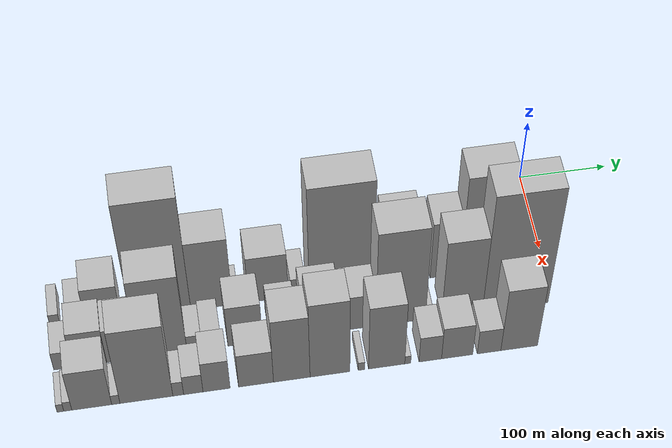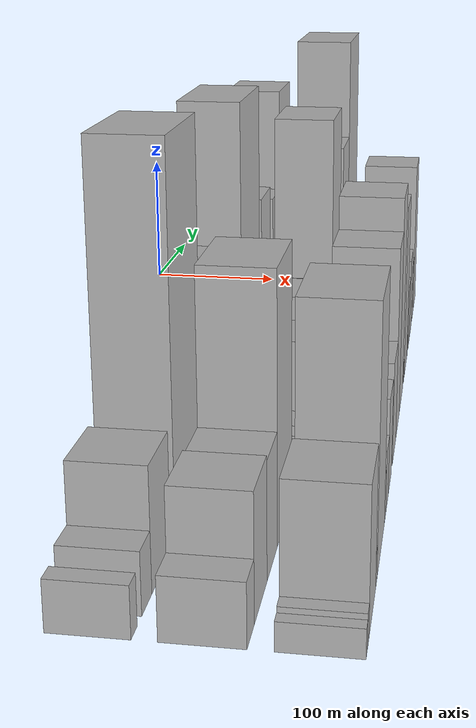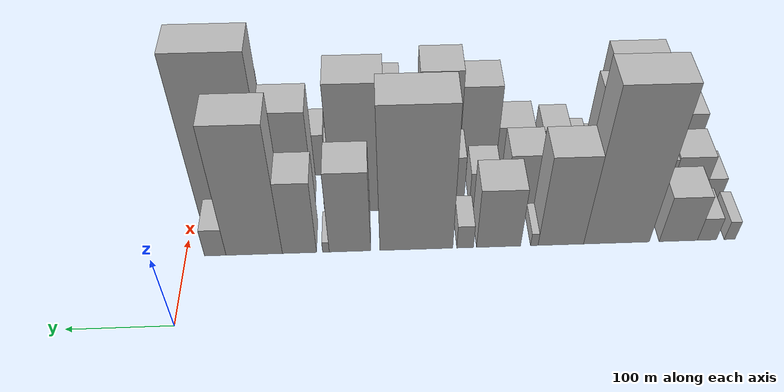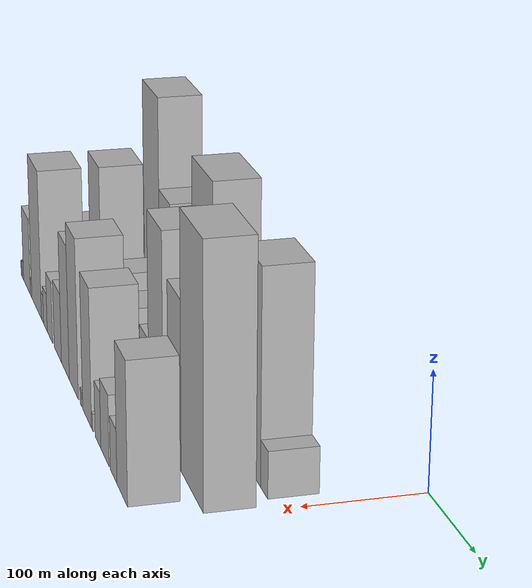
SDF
<sdf version="1.6">
 <world name="default">
  <model name="building_1">
   <static>1</static>
   <pose>100.0000 -542.5164 0 0.000000 0.000000 0.000000</pose>
   <link name="link">
    <pose>0 0 13.50 0 0 0</pose>
    <collision name="collision"><geometry><box><size>40.0000 10.9673 27.0000</size></box></geometry></collision>
    <visual name="visual">
     <cast_shadows>0</cast_shadows>
     <geometry><box><size>40.0000 10.9673 27.0000</size></box></geometry>
     <material>
      <script>
       <uri>model://HANNAS_wall/materials/scripts</uri>
       <uri>model://HANNAS_wall/materials/textures</uri>
       <name>vrc/HANNAS_wall</name>
      </script>
     </material>
    </visual>
   </link>
  </model>
  <model name="building_2">
   <static>1</static>
   <pose>100.0000 -519.4417 0 0.000000 0.000000 0.000000</pose>
   <link name="link">
    <pose>0 0 16.50 0 0 0</pose>
    <collision name="collision"><geometry><box><size>40.0000 19.1822 33.0000</size></box></geometry></collision>
    <visual name="visual">
     <cast_shadows>0</cast_shadows>
     <geometry><box><size>40.0000 19.1822 33.0000</size></box></geometry>
     <material>
      <script>
       <uri>model://HANNAS_wall/materials/scripts</uri>
       <uri>model://HANNAS_wall/materials/textures</uri>
       <name>vrc/HANNAS_wall</name>
      </script>
     </material>
    </visual>
   </link>
  </model>
  <model name="building_3">
   <static>1</static>
   <pose>100.0000 -490.4910 0 0.000000 0.000000 0.000000</pose>
   <link name="link">
    <pose>0 0 33.00 0 0 0</pose>
    <collision name="collision"><geometry><box><size>40.0000 38.7191 66.0000</size></box></geometry></collision>
    <visual name="visual">
     <cast_shadows>0</cast_shadows>
     <geometry><box><size>40.0000 38.7191 66.0000</size></box></geometry>
     <material>
      <script>
       <uri>model://HANNAS_wall/materials/scripts</uri>
       <uri>model://HANNAS_wall/materials/textures</uri>
       <name>vrc/HANNAS_wall</name>
      </script>
     </material>
    </visual>
   </link>
  </model>
  <model name="building_4">
   <static>1</static>
   <pose>100.0000 -427.9888 0 0.000000 0.000000 0.000000</pose>
   <link name="link">
    <pose>0 0 105.00 0 0 0</pose>
    <collision name="collision"><geometry><box><size>40.0000 66.2853 210.0000</size></box></geometry></collision>
    <visual name="visual">
     <cast_shadows>0</cast_shadows>
     <geometry><box><size>40.0000 66.2853 210.0000</size></box></geometry>
     <material>
      <script>
       <uri>model://HANNAS_wall/materials/scripts</uri>
       <uri>model://HANNAS_wall/materials/textures</uri>
       <name>vrc/HANNAS_wall</name>
      </script>
     </material>
    </visual>
   </link>
  </model>
  <model name="building_5">
   <static>1</static>
   <pose>100.0000 -371.9777 0 0.000000 0.000000 0.000000</pose>
   <link name="link">
    <pose>0 0 63.00 0 0 0</pose>
    <collision name="collision"><geometry><box><size>40.0000 45.7369 126.0000</size></box></geometry></collision>
    <visual name="visual">
     <cast_shadows>0</cast_shadows>
     <geometry><box><size>40.0000 45.7369 126.0000</size></box></geometry>
     <material>
      <script>
       <uri>model://HANNAS_wall/materials/scripts</uri>
       <uri>model://HANNAS_wall/materials/textures</uri>
       <name>vrc/HANNAS_wall</name>
      </script>
     </material>
    </visual>
   </link>
  </model>
  <model name="building_6">
   <static>1</static>
   <pose>100.0000 -345.3822 0 0.000000 0.000000 0.000000</pose>
   <link name="link">
    <pose>0 0 9.00 0 0 0</pose>
    <collision name="collision"><geometry><box><size>40.0000 7.4540 18.0000</size></box></geometry></collision>
    <visual name="visual">
     <cast_shadows>0</cast_shadows>
     <geometry><box><size>40.0000 7.4540 18.0000</size></box></geometry>
     <material>
      <script>
       <uri>model://HANNAS_wall/materials/scripts</uri>
       <uri>model://HANNAS_wall/materials/textures</uri>
       <name>vrc/HANNAS_wall</name>
      </script>
     </material>
    </visual>
   </link>
  </model>
  <model name="building_7">
   <static>1</static>
   <pose>100.0000 -309.6025 0 0.000000 0.000000 0.000000</pose>
   <link name="link">
    <pose>0 0 42.00 0 0 0</pose>
    <collision name="collision"><geometry><box><size>40.0000 44.1054 84.0000</size></box></geometry></collision>
    <visual name="visual">
     <cast_shadows>0</cast_shadows>
     <geometry><box><size>40.0000 44.1054 84.0000</size></box></geometry>
     <material>
      <script>
       <uri>model://HANNAS_wall/materials/scripts</uri>
       <uri>model://HANNAS_wall/materials/textures</uri>
       <name>vrc/HANNAS_wall</name>
      </script>
     </material>
    </visual>
   </link>
  </model>
  <model name="building_8">
   <static>1</static>
   <pose>100.0000 -276.2103 0 0.000000 0.000000 0.000000</pose>
   <link name="link">
    <pose>0 0 16.50 0 0 0</pose>
    <collision name="collision"><geometry><box><size>40.0000 16.6790 33.0000</size></box></geometry></collision>
    <visual name="visual">
     <cast_shadows>0</cast_shadows>
     <geometry><box><size>40.0000 16.6790 33.0000</size></box></geometry>
     <material>
      <script>
       <uri>model://HANNAS_wall/materials/scripts</uri>
       <uri>model://HANNAS_wall/materials/textures</uri>
       <name>vrc/HANNAS_wall</name>
      </script>
     </material>
    </visual>
   </link>
  </model>
  <model name="building_9">
   <static>1</static>
   <pose>100.0000 -227.6082 0 0.000000 0.000000 0.000000</pose>
   <link name="link">
    <pose>0 0 97.50 0 0 0</pose>
    <collision name="collision"><geometry><box><size>40.0000 72.5251 195.0000</size></box></geometry></collision>
    <visual name="visual">
     <cast_shadows>0</cast_shadows>
     <geometry><box><size>40.0000 72.5251 195.0000</size></box></geometry>
     <material>
      <script>
       <uri>model://HANNAS_wall/materials/scripts</uri>
       <uri>model://HANNAS_wall/materials/textures</uri>
       <name>vrc/HANNAS_wall</name>
      </script>
     </material>
    </visual>
   </link>
  </model>
  <model name="building_10">
   <static>1</static>
   <pose>100.0000 -161.7395 0 0.000000 0.000000 0.000000</pose>
   <link name="link">
    <pose>0 0 57.00 0 0 0</pose>
    <collision name="collision"><geometry><box><size>40.0000 41.2122 114.0000</size></box></geometry></collision>
    <visual name="visual">
     <cast_shadows>0</cast_shadows>
     <geometry><box><size>40.0000 41.2122 114.0000</size></box></geometry>
     <material>
      <script>
       <uri>model://HANNAS_wall/materials/scripts</uri>
       <uri>model://HANNAS_wall/materials/textures</uri>
       <name>vrc/HANNAS_wall</name>
      </script>
     </material>
    </visual>
   </link>
  </model>
  <model name="building_11">
   <static>1</static>
   <pose>100.0000 -137.8704 0 0.000000 0.000000 0.000000</pose>
   <link name="link">
    <pose>0 0 7.50 0 0 0</pose>
    <collision name="collision"><geometry><box><size>40.0000 6.5261 15.0000</size></box></geometry></collision>
    <visual name="visual">
     <cast_shadows>0</cast_shadows>
     <geometry><box><size>40.0000 6.5261 15.0000</size></box></geometry>
     <material>
      <script>
       <uri>model://HANNAS_wall/materials/scripts</uri>
       <uri>model://HANNAS_wall/materials/textures</uri>
       <name>vrc/HANNAS_wall</name>
      </script>
     </material>
    </visual>
   </link>
  </model>
  <model name="building_12">
   <static>1</static>
   <pose>100.0000 -111.7329 0 0.000000 0.000000 0.000000</pose>
   <link name="link">
    <pose>0 0 51.00 0 0 0</pose>
    <collision name="collision"><geometry><box><size>40.0000 33.7489 102.0000</size></box></geometry></collision>
    <visual name="visual">
     <cast_shadows>0</cast_shadows>
     <geometry><box><size>40.0000 33.7489 102.0000</size></box></geometry>
     <material>
      <script>
       <uri>model://HANNAS_wall/materials/scripts</uri>
       <uri>model://HANNAS_wall/materials/textures</uri>
       <name>vrc/HANNAS_wall</name>
      </script>
     </material>
    </visual>
   </link>
  </model>
  <model name="building_13">
   <static>1</static>
   <pose>100.0000 -67.0832 0 0.000000 0.000000 0.000000</pose>
   <link name="link">
    <pose>0 0 88.50 0 0 0</pose>
    <collision name="collision"><geometry><box><size>40.0000 55.5505 177.0000</size></box></geometry></collision>
    <visual name="visual">
     <cast_shadows>0</cast_shadows>
     <geometry><box><size>40.0000 55.5505 177.0000</size></box></geometry>
     <material>
      <script>
       <uri>model://HANNAS_wall/materials/scripts</uri>
       <uri>model://HANNAS_wall/materials/textures</uri>
       <name>vrc/HANNAS_wall</name>
      </script>
     </material>
    </visual>
   </link>
  </model>
  <model name="building_14">
   <static>1</static>
   <pose>100.0000 -28.7633 0 0.000000 0.000000 0.000000</pose>
   <link name="link">
    <pose>0 0 19.50 0 0 0</pose>
    <collision name="collision"><geometry><box><size>40.0000 21.0894 39.0000</size></box></geometry></collision>
    <visual name="visual">
     <cast_shadows>0</cast_shadows>
     <geometry><box><size>40.0000 21.0894 39.0000</size></box></geometry>
     <material>
      <script>
       <uri>model://HANNAS_wall/materials/scripts</uri>
       <uri>model://HANNAS_wall/materials/textures</uri>
       <name>vrc/HANNAS_wall</name>
      </script>
     </material>
    </visual>
   </link>
  </model>
  <model name="building_31">
   <static>1</static>
   <pose>152.0000 -538.1309 0 0.000000 0.000000 0.000000</pose>
   <link name="link">
    <pose>0 0 16.50 0 0 0</pose>
    <collision name="collision"><geometry><box><size>40.0000 19.7381 33.0000</size></box></geometry></collision>
    <visual name="visual">
     <cast_shadows>0</cast_shadows>
     <geometry><box><size>40.0000 19.7381 33.0000</size></box></geometry>
     <material>
      <script>
       <uri>model://HANNAS_wall/materials/scripts</uri>
       <uri>model://HANNAS_wall/materials/textures</uri>
       <name>vrc/HANNAS_wall</name>
      </script>
     </material>
    </visual>
   </link>
  </model>
  <model name="building_32">
   <static>1</static>
   <pose>152.0000 -509.7817 0 0.000000 0.000000 0.000000</pose>
   <link name="link">
    <pose>0 0 33.00 0 0 0</pose>
    <collision name="collision"><geometry><box><size>40.0000 36.9604 66.0000</size></box></geometry></collision>
    <visual name="visual">
     <cast_shadows>0</cast_shadows>
     <geometry><box><size>40.0000 36.9604 66.0000</size></box></geometry>
     <material>
      <script>
       <uri>model://HANNAS_wall/materials/scripts</uri>
       <uri>model://HANNAS_wall/materials/textures</uri>
       <name>vrc/HANNAS_wall</name>
      </script>
     </material>
    </visual>
   </link>
  </model>
  <model name="building_33">
   <static>1</static>
   <pose>152.0000 -474.4890 0 0.000000 0.000000 0.000000</pose>
   <link name="link">
    <pose>0 0 31.50 0 0 0</pose>
    <collision name="collision"><geometry><box><size>40.0000 33.6252 63.0000</size></box></geometry></collision>
    <visual name="visual">
     <cast_shadows>0</cast_shadows>
     <geometry><box><size>40.0000 33.6252 63.0000</size></box></geometry>
     <material>
      <script>
       <uri>model://HANNAS_wall/materials/scripts</uri>
       <uri>model://HANNAS_wall/materials/textures</uri>
       <name>vrc/HANNAS_wall</name>
      </script>
     </material>
    </visual>
   </link>
  </model>
  <model name="building_34">
   <static>1</static>
   <pose>152.0000 -431.1492 0 0.000000 0.000000 0.000000</pose>
   <link name="link">
    <pose>0 0 73.50 0 0 0</pose>
    <collision name="collision"><geometry><box><size>40.0000 53.0543 147.0000</size></box></geometry></collision>
    <visual name="visual">
     <cast_shadows>0</cast_shadows>
     <geometry><box><size>40.0000 53.0543 147.0000</size></box></geometry>
     <material>
      <script>
       <uri>model://HANNAS_wall/materials/scripts</uri>
       <uri>model://HANNAS_wall/materials/textures</uri>
       <name>vrc/HANNAS_wall</name>
      </script>
     </material>
    </visual>
   </link>
  </model>
  <model name="building_35">
   <static>1</static>
   <pose>152.0000 -396.4464 0 0.000000 0.000000 0.000000</pose>
   <link name="link">
    <pose>0 0 15.00 0 0 0</pose>
    <collision name="collision"><geometry><box><size>40.0000 16.3513 30.0000</size></box></geometry></collision>
    <visual name="visual">
     <cast_shadows>0</cast_shadows>
     <geometry><box><size>40.0000 16.3513 30.0000</size></box></geometry>
     <material>
      <script>
       <uri>model://HANNAS_wall/materials/scripts</uri>
       <uri>model://HANNAS_wall/materials/textures</uri>
       <name>vrc/HANNAS_wall</name>
      </script>
     </material>
    </visual>
   </link>
  </model>
  <model name="building_36">
   <static>1</static>
   <pose>152.0000 -377.8479 0 0.000000 0.000000 0.000000</pose>
   <link name="link">
    <pose>0 0 18.00 0 0 0</pose>
    <collision name="collision"><geometry><box><size>40.0000 20.8458 36.0000</size></box></geometry></collision>
    <visual name="visual">
     <cast_shadows>0</cast_shadows>
     <geometry><box><size>40.0000 20.8458 36.0000</size></box></geometry>
     <material>
      <script>
       <uri>model://HANNAS_wall/materials/scripts</uri>
       <uri>model://HANNAS_wall/materials/textures</uri>
       <name>vrc/HANNAS_wall</name>
      </script>
     </material>
    </visual>
   </link>
  </model>
  <model name="building_37">
   <static>1</static>
   <pose>152.0000 -341.6063 0 0.000000 0.000000 0.000000</pose>
   <link name="link">
    <pose>0 0 37.50 0 0 0</pose>
    <collision name="collision"><geometry><box><size>40.0000 37.6375 75.0000</size></box></geometry></collision>
    <visual name="visual">
     <cast_shadows>0</cast_shadows>
     <geometry><box><size>40.0000 37.6375 75.0000</size></box></geometry>
     <material>
      <script>
       <uri>model://HANNAS_wall/materials/scripts</uri>
       <uri>model://HANNAS_wall/materials/textures</uri>
       <name>vrc/HANNAS_wall</name>
      </script>
     </material>
    </visual>
   </link>
  </model>
  <model name="building_38">
   <static>1</static>
   <pose>152.0000 -299.8756 0 0.000000 0.000000 0.000000</pose>
   <link name="link">
    <pose>0 0 25.50 0 0 0</pose>
    <collision name="collision"><geometry><box><size>40.0000 29.8239 51.0000</size></box></geometry></collision>
    <visual name="visual">
     <cast_shadows>0</cast_shadows>
     <geometry><box><size>40.0000 29.8239 51.0000</size></box></geometry>
     <material>
      <script>
       <uri>model://HANNAS_wall/materials/scripts</uri>
       <uri>model://HANNAS_wall/materials/textures</uri>
       <name>vrc/HANNAS_wall</name>
      </script>
     </material>
    </visual>
   </link>
  </model>
  <model name="building_39">
   <static>1</static>
   <pose>152.0000 -258.6633 0 0.000000 0.000000 0.000000</pose>
   <link name="link">
    <pose>0 0 37.50 0 0 0</pose>
    <collision name="collision"><geometry><box><size>40.0000 40.6005 75.0000</size></box></geometry></collision>
    <visual name="visual">
     <cast_shadows>0</cast_shadows>
     <geometry><box><size>40.0000 40.6005 75.0000</size></box></geometry>
     <material>
      <script>
       <uri>model://HANNAS_wall/materials/scripts</uri>
       <uri>model://HANNAS_wall/materials/textures</uri>
       <name>vrc/HANNAS_wall</name>
      </script>
     </material>
    </visual>
   </link>
  </model>
  <model name="building_40">
   <static>1</static>
   <pose>152.0000 -215.9111 0 0.000000 0.000000 0.000000</pose>
   <link name="link">
    <pose>0 0 31.50 0 0 0</pose>
    <collision name="collision"><geometry><box><size>40.0000 34.9039 63.0000</size></box></geometry></collision>
    <visual name="visual">
     <cast_shadows>0</cast_shadows>
     <geometry><box><size>40.0000 34.9039 63.0000</size></box></geometry>
     <material>
      <script>
       <uri>model://HANNAS_wall/materials/scripts</uri>
       <uri>model://HANNAS_wall/materials/textures</uri>
       <name>vrc/HANNAS_wall</name>
      </script>
     </material>
    </visual>
   </link>
  </model>
  <model name="building_41">
   <static>1</static>
   <pose>152.0000 -171.0109 0 0.000000 0.000000 0.000000</pose>
   <link name="link">
    <pose>0 0 87.00 0 0 0</pose>
    <collision name="collision"><geometry><box><size>40.0000 54.8966 174.0000</size></box></geometry></collision>
    <visual name="visual">
     <cast_shadows>0</cast_shadows>
     <geometry><box><size>40.0000 54.8966 174.0000</size></box></geometry>
     <material>
      <script>
       <uri>model://HANNAS_wall/materials/scripts</uri>
       <uri>model://HANNAS_wall/materials/textures</uri>
       <name>vrc/HANNAS_wall</name>
      </script>
     </material>
    </visual>
   </link>
  </model>
  <model name="building_42">
   <static>1</static>
   <pose>152.0000 -139.5352 0 0.000000 0.000000 0.000000</pose>
   <link name="link">
    <pose>0 0 9.00 0 0 0</pose>
    <collision name="collision"><geometry><box><size>40.0000 8.0548 18.0000</size></box></geometry></collision>
    <visual name="visual">
     <cast_shadows>0</cast_shadows>
     <geometry><box><size>40.0000 8.0548 18.0000</size></box></geometry>
     <material>
      <script>
       <uri>model://HANNAS_wall/materials/scripts</uri>
       <uri>model://HANNAS_wall/materials/textures</uri>
       <name>vrc/HANNAS_wall</name>
      </script>
     </material>
    </visual>
   </link>
  </model>
  <model name="building_43">
   <static>1</static>
   <pose>152.0000 -102.8587 0 0.000000 0.000000 0.000000</pose>
   <link name="link">
    <pose>0 0 70.50 0 0 0</pose>
    <collision name="collision"><geometry><box><size>40.0000 45.2981 141.0000</size></box></geometry></collision>
    <visual name="visual">
     <cast_shadows>0</cast_shadows>
     <geometry><box><size>40.0000 45.2981 141.0000</size></box></geometry>
     <material>
      <script>
       <uri>model://HANNAS_wall/materials/scripts</uri>
       <uri>model://HANNAS_wall/materials/textures</uri>
       <name>vrc/HANNAS_wall</name>
      </script>
     </material>
    </visual>
   </link>
  </model>
  <model name="building_44">
   <static>1</static>
   <pose>152.0000 -43.5163 0 0.000000 0.000000 0.000000</pose>
   <link name="link">
    <pose>0 0 106.50 0 0 0</pose>
    <collision name="collision"><geometry><box><size>40.0000 73.3867 213.0000</size></box></geometry></collision>
    <visual name="visual">
     <cast_shadows>0</cast_shadows>
     <geometry><box><size>40.0000 73.3867 213.0000</size></box></geometry>
     <material>
      <script>
       <uri>model://HANNAS_wall/materials/scripts</uri>
       <uri>model://HANNAS_wall/materials/textures</uri>
       <name>vrc/HANNAS_wall</name>
      </script>
     </material>
    </visual>
   </link>
  </model>
  <model name="building_62">
   <static>1</static>
   <pose>204.0000 -544.4716 0 0.000000 0.000000 0.000000</pose>
   <link name="link">
    <pose>0 0 7.50 0 0 0</pose>
    <collision name="collision"><geometry><box><size>40.0000 7.0568 15.0000</size></box></geometry></collision>
    <visual name="visual">
     <cast_shadows>0</cast_shadows>
     <geometry><box><size>40.0000 7.0568 15.0000</size></box></geometry>
     <material>
      <script>
       <uri>model://HANNAS_wall/materials/scripts</uri>
       <uri>model://HANNAS_wall/materials/textures</uri>
       <name>vrc/HANNAS_wall</name>
      </script>
     </material>
    </visual>
   </link>
  </model>
  <model name="building_63">
   <static>1</static>
   <pose>204.0000 -536.7297 0 0.000000 0.000000 0.000000</pose>
   <link name="link">
    <pose>0 0 9.00 0 0 0</pose>
    <collision name="collision"><geometry><box><size>40.0000 8.4271 18.0000</size></box></geometry></collision>
    <visual name="visual">
     <cast_shadows>0</cast_shadows>
     <geometry><box><size>40.0000 8.4271 18.0000</size></box></geometry>
     <material>
      <script>
       <uri>model://HANNAS_wall/materials/scripts</uri>
       <uri>model://HANNAS_wall/materials/textures</uri>
       <name>vrc/HANNAS_wall</name>
      </script>
     </material>
    </visual>
   </link>
  </model>
  <model name="building_64">
   <static>1</static>
   <pose>204.0000 -511.4662 0 0.000000 0.000000 0.000000</pose>
   <link name="link">
    <pose>0 0 37.50 0 0 0</pose>
    <collision name="collision"><geometry><box><size>40.0000 42.0999 75.0000</size></box></geometry></collision>
    <visual name="visual">
     <cast_shadows>0</cast_shadows>
     <geometry><box><size>40.0000 42.0999 75.0000</size></box></geometry>
     <material>
      <script>
       <uri>model://HANNAS_wall/materials/scripts</uri>
       <uri>model://HANNAS_wall/materials/textures</uri>
       <name>vrc/HANNAS_wall</name>
      </script>
     </material>
    </visual>
   </link>
  </model>
  <model name="building_65">
   <static>1</static>
   <pose>204.0000 -486.0184 0 0.000000 0.000000 0.000000</pose>
   <link name="link">
    <pose>0 0 9.00 0 0 0</pose>
    <collision name="collision"><geometry><box><size>40.0000 8.7957 18.0000</size></box></geometry></collision>
    <visual name="visual">
     <cast_shadows>0</cast_shadows>
     <geometry><box><size>40.0000 8.7957 18.0000</size></box></geometry>
     <material>
      <script>
       <uri>model://HANNAS_wall/materials/scripts</uri>
       <uri>model://HANNAS_wall/materials/textures</uri>
       <name>vrc/HANNAS_wall</name>
      </script>
     </material>
    </visual>
   </link>
  </model>
  <model name="building_66">
   <static>1</static>
   <pose>204.0000 -453.5612 0 0.000000 0.000000 0.000000</pose>
   <link name="link">
    <pose>0 0 70.50 0 0 0</pose>
    <collision name="collision"><geometry><box><size>40.0000 56.1186 141.0000</size></box></geometry></collision>
    <visual name="visual">
     <cast_shadows>0</cast_shadows>
     <geometry><box><size>40.0000 56.1186 141.0000</size></box></geometry>
     <material>
      <script>
       <uri>model://HANNAS_wall/materials/scripts</uri>
       <uri>model://HANNAS_wall/materials/textures</uri>
       <name>vrc/HANNAS_wall</name>
      </script>
     </material>
    </visual>
   </link>
  </model>
  <model name="building_67">
   <static>1</static>
   <pose>204.0000 -419.7666 0 0.000000 0.000000 0.000000</pose>
   <link name="link">
    <pose>0 0 13.50 0 0 0</pose>
    <collision name="collision"><geometry><box><size>40.0000 11.4705 27.0000</size></box></geometry></collision>
    <visual name="visual">
     <cast_shadows>0</cast_shadows>
     <geometry><box><size>40.0000 11.4705 27.0000</size></box></geometry>
     <material>
      <script>
       <uri>model://HANNAS_wall/materials/scripts</uri>
       <uri>model://HANNAS_wall/materials/textures</uri>
       <name>vrc/HANNAS_wall</name>
      </script>
     </material>
    </visual>
   </link>
  </model>
  <model name="building_68">
   <static>1</static>
   <pose>204.0000 -403.7136 0 0.000000 0.000000 0.000000</pose>
   <link name="link">
    <pose>0 0 18.00 0 0 0</pose>
    <collision name="collision"><geometry><box><size>40.0000 20.6355 36.0000</size></box></geometry></collision>
    <visual name="visual">
     <cast_shadows>0</cast_shadows>
     <geometry><box><size>40.0000 20.6355 36.0000</size></box></geometry>
     <material>
      <script>
       <uri>model://HANNAS_wall/materials/scripts</uri>
       <uri>model://HANNAS_wall/materials/textures</uri>
       <name>vrc/HANNAS_wall</name>
      </script>
     </material>
    </visual>
   </link>
  </model>
  <model name="building_69">
   <static>1</static>
   <pose>204.0000 -378.9000 0 0.000000 0.000000 0.000000</pose>
   <link name="link">
    <pose>0 0 28.50 0 0 0</pose>
    <collision name="collision"><geometry><box><size>40.0000 28.9917 57.0000</size></box></geometry></collision>
    <visual name="visual">
     <cast_shadows>0</cast_shadows>
     <geometry><box><size>40.0000 28.9917 57.0000</size></box></geometry>
     <material>
      <script>
       <uri>model://HANNAS_wall/materials/scripts</uri>
       <uri>model://HANNAS_wall/materials/textures</uri>
       <name>vrc/HANNAS_wall</name>
      </script>
     </material>
    </visual>
   </link>
  </model>
  <model name="building_70">
   <static>1</static>
   <pose>204.0000 -336.6611 0 0.000000 0.000000 0.000000</pose>
   <link name="link">
    <pose>0 0 31.50 0 0 0</pose>
    <collision name="collision"><geometry><box><size>40.0000 37.4863 63.0000</size></box></geometry></collision>
    <visual name="visual">
     <cast_shadows>0</cast_shadows>
     <geometry><box><size>40.0000 37.4863 63.0000</size></box></geometry>
     <material>
      <script>
       <uri>model://HANNAS_wall/materials/scripts</uri>
       <uri>model://HANNAS_wall/materials/textures</uri>
       <name>vrc/HANNAS_wall</name>
      </script>
     </material>
    </visual>
   </link>
  </model>
  <model name="building_71">
   <static>1</static>
   <pose>204.0000 -298.2138 0 0.000000 0.000000 0.000000</pose>
   <link name="link">
    <pose>0 0 60.00 0 0 0</pose>
    <collision name="collision"><geometry><box><size>40.0000 39.4083 120.0000</size></box></geometry></collision>
    <visual name="visual">
     <cast_shadows>0</cast_shadows>
     <geometry><box><size>40.0000 39.4083 120.0000</size></box></geometry>
     <material>
      <script>
       <uri>model://HANNAS_wall/materials/scripts</uri>
       <uri>model://HANNAS_wall/materials/textures</uri>
       <name>vrc/HANNAS_wall</name>
      </script>
     </material>
    </visual>
   </link>
  </model>
  <model name="building_72">
   <static>1</static>
   <pose>204.0000 -256.9947 0 0.000000 0.000000 0.000000</pose>
   <link name="link">
    <pose>0 0 70.50 0 0 0</pose>
    <collision name="collision"><geometry><box><size>40.0000 43.0298 141.0000</size></box></geometry></collision>
    <visual name="visual">
     <cast_shadows>0</cast_shadows>
     <geometry><box><size>40.0000 43.0298 141.0000</size></box></geometry>
     <material>
      <script>
       <uri>model://HANNAS_wall/materials/scripts</uri>
       <uri>model://HANNAS_wall/materials/textures</uri>
       <name>vrc/HANNAS_wall</name>
      </script>
     </material>
    </visual>
   </link>
  </model>
  <model name="building_73">
   <static>1</static>
   <pose>204.0000 -222.8875 0 0.000000 0.000000 0.000000</pose>
   <link name="link">
    <pose>0 0 7.50 0 0 0</pose>
    <collision name="collision"><geometry><box><size>40.0000 7.1845 15.0000</size></box></geometry></collision>
    <visual name="visual">
     <cast_shadows>0</cast_shadows>
     <geometry><box><size>40.0000 7.1845 15.0000</size></box></geometry>
     <material>
      <script>
       <uri>model://HANNAS_wall/materials/scripts</uri>
       <uri>model://HANNAS_wall/materials/textures</uri>
       <name>vrc/HANNAS_wall</name>
      </script>
     </material>
    </visual>
   </link>
  </model>
  <model name="building_74">
   <static>1</static>
   <pose>204.0000 -195.5543 0 0.000000 0.000000 0.000000</pose>
   <link name="link">
    <pose>0 0 60.00 0 0 0</pose>
    <collision name="collision"><geometry><box><size>40.0000 39.4819 120.0000</size></box></geometry></collision>
    <visual name="visual">
     <cast_shadows>0</cast_shadows>
     <geometry><box><size>40.0000 39.4819 120.0000</size></box></geometry>
     <material>
      <script>
       <uri>model://HANNAS_wall/materials/scripts</uri>
       <uri>model://HANNAS_wall/materials/textures</uri>
       <name>vrc/HANNAS_wall</name>
      </script>
     </material>
    </visual>
   </link>
  </model>
  <model name="building_75">
   <static>1</static>
   <pose>204.0000 -172.5524 0 0.000000 0.000000 0.000000</pose>
   <link name="link">
    <pose>0 0 7.50 0 0 0</pose>
    <collision name="collision"><geometry><box><size>40.0000 6.5219 15.0000</size></box></geometry></collision>
    <visual name="visual">
     <cast_shadows>0</cast_shadows>
     <geometry><box><size>40.0000 6.5219 15.0000</size></box></geometry>
     <material>
      <script>
       <uri>model://HANNAS_wall/materials/scripts</uri>
       <uri>model://HANNAS_wall/materials/textures</uri>
       <name>vrc/HANNAS_wall</name>
      </script>
     </material>
    </visual>
   </link>
  </model>
  <model name="building_76">
   <static>1</static>
   <pose>204.0000 -147.9792 0 0.000000 0.000000 0.000000</pose>
   <link name="link">
    <pose>0 0 24.00 0 0 0</pose>
    <collision name="collision"><geometry><box><size>40.0000 24.6246 48.0000</size></box></geometry></collision>
    <visual name="visual">
     <cast_shadows>0</cast_shadows>
     <geometry><box><size>40.0000 24.6246 48.0000</size></box></geometry>
     <material>
      <script>
       <uri>model://HANNAS_wall/materials/scripts</uri>
       <uri>model://HANNAS_wall/materials/textures</uri>
       <name>vrc/HANNAS_wall</name>
      </script>
     </material>
    </visual>
   </link>
  </model>
  <model name="building_77">
   <static>1</static>
   <pose>204.0000 -118.6137 0 0.000000 0.000000 0.000000</pose>
   <link name="link">
    <pose>0 0 30.00 0 0 0</pose>
    <collision name="collision"><geometry><box><size>40.0000 34.1065 60.0000</size></box></geometry></collision>
    <visual name="visual">
     <cast_shadows>0</cast_shadows>
     <geometry><box><size>40.0000 34.1065 60.0000</size></box></geometry>
     <material>
      <script>
       <uri>model://HANNAS_wall/materials/scripts</uri>
       <uri>model://HANNAS_wall/materials/textures</uri>
       <name>vrc/HANNAS_wall</name>
      </script>
     </material>
    </visual>
   </link>
  </model>
  <model name="building_78">
   <static>1</static>
   <pose>204.0000 -83.6179 0 0.000000 0.000000 0.000000</pose>
   <link name="link">
    <pose>0 0 22.50 0 0 0</pose>
    <collision name="collision"><geometry><box><size>40.0000 25.8851 45.0000</size></box></geometry></collision>
    <visual name="visual">
     <cast_shadows>0</cast_shadows>
     <geometry><box><size>40.0000 25.8851 45.0000</size></box></geometry>
     <material>
      <script>
       <uri>model://HANNAS_wall/materials/scripts</uri>
       <uri>model://HANNAS_wall/materials/textures</uri>
       <name>vrc/HANNAS_wall</name>
      </script>
     </material>
    </visual>
   </link>
  </model>
  <model name="building_79">
   <static>1</static>
   <pose>204.0000 -50.4605 0 0.000000 0.000000 0.000000</pose>
   <link name="link">
    <pose>0 0 58.50 0 0 0</pose>
    <collision name="collision"><geometry><box><size>40.0000 40.4296 117.0000</size></box></geometry></collision>
    <visual name="visual">
     <cast_shadows>0</cast_shadows>
     <geometry><box><size>40.0000 40.4296 117.0000</size></box></geometry>
     <material>
      <script>
       <uri>model://HANNAS_wall/materials/scripts</uri>
       <uri>model://HANNAS_wall/materials/textures</uri>
       <name>vrc/HANNAS_wall</name>
      </script>
     </material>
    </visual>
   </link>
  </model>
 </world>
</sdf>
